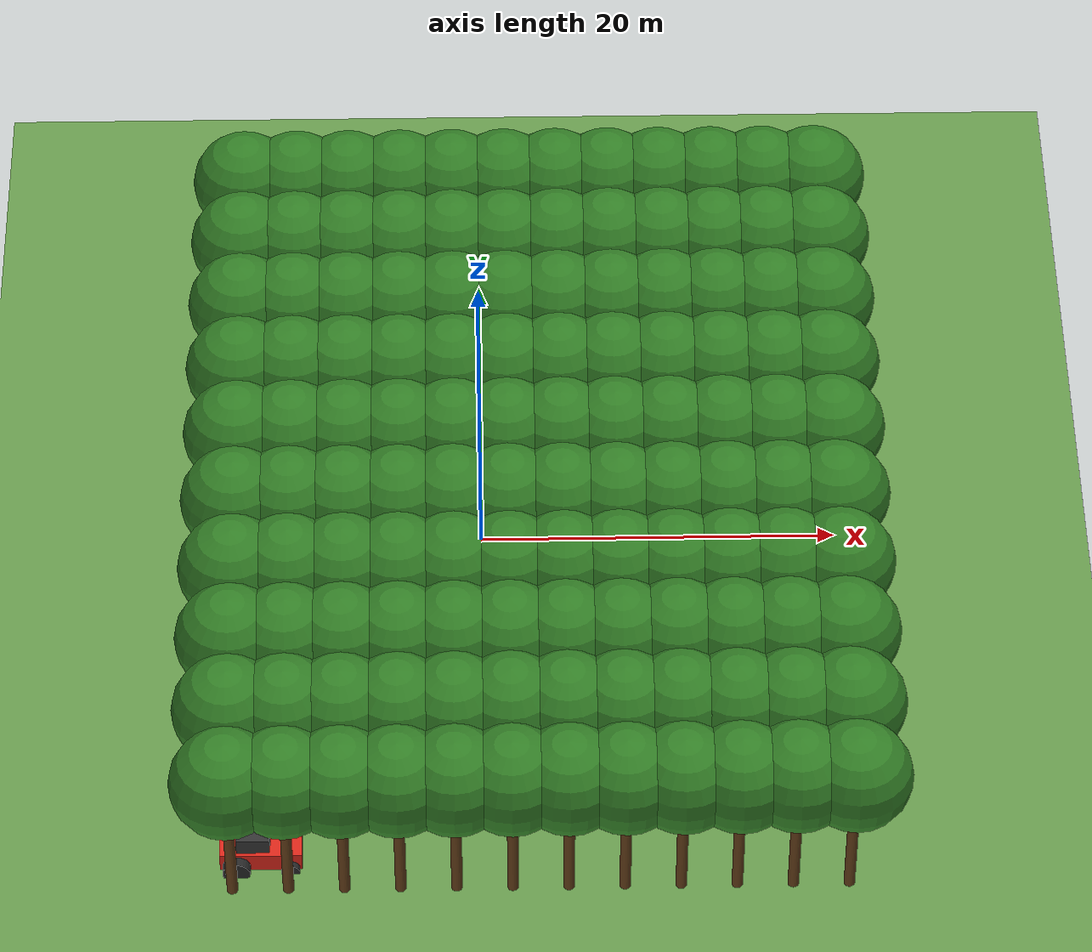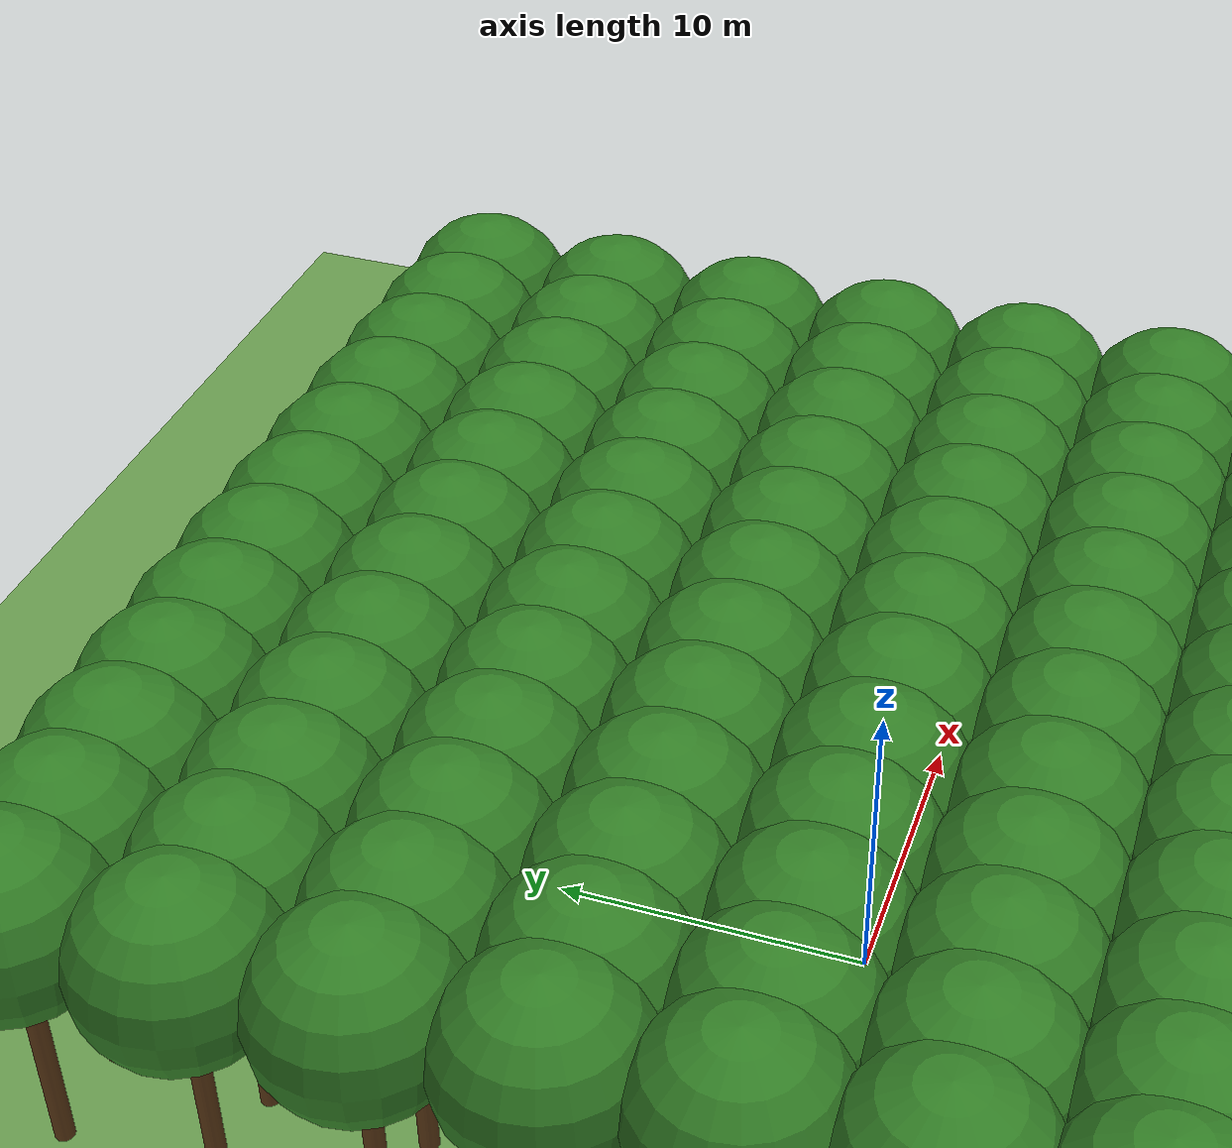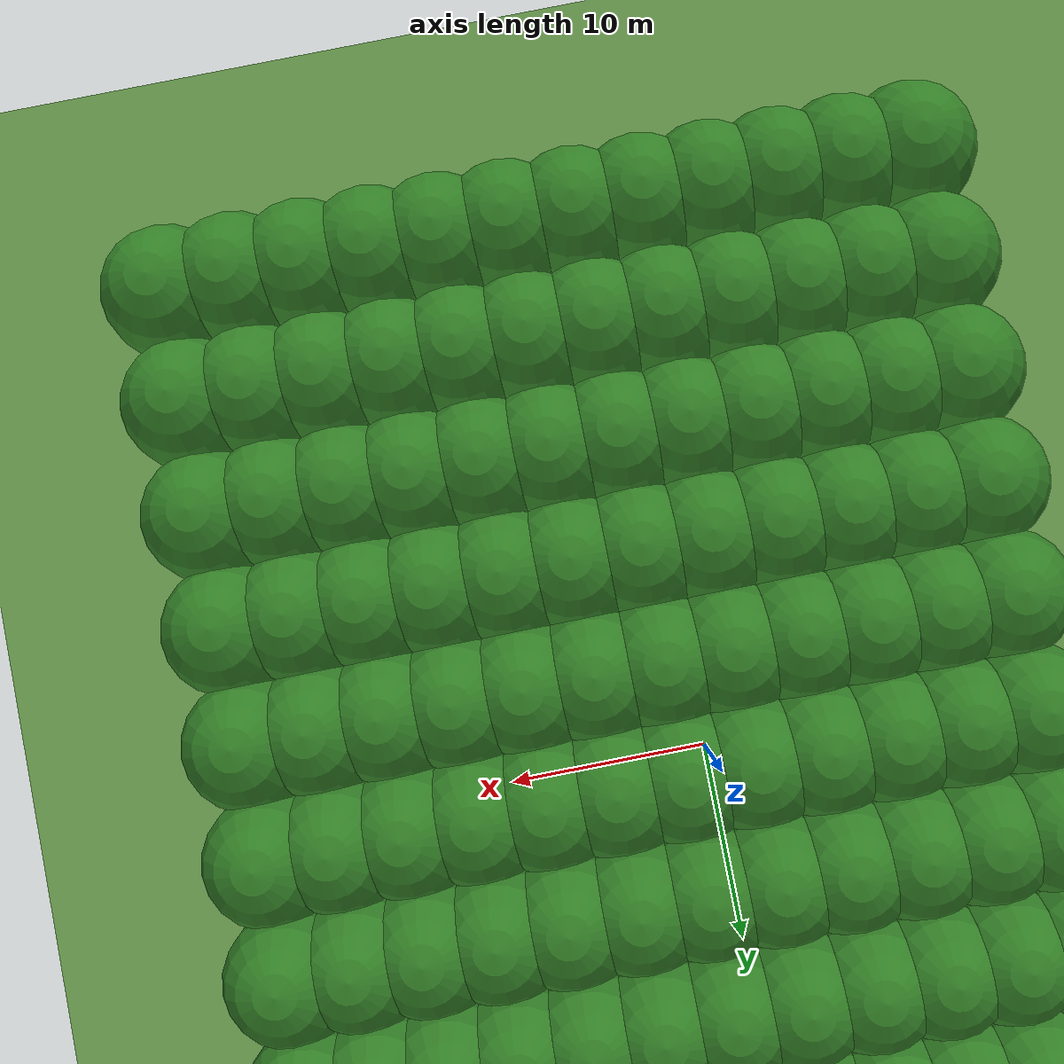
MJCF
<mujoco model="orchard_scene">
  <compiler angle="radian"/>

  <option integrator="implicitfast" iterations="50"/>

  <visual>
    <headlight ambient="0.3 0.3 0.3" diffuse="0.6 0.6 0.6"/>
  </visual>

  <asset>
    <texture type="2d" colorspace="auto" name="grid" builtin="checker" rgb1="0.2 0.3 0.4" rgb2="0.1 0.2 0.3" width="512" height="512"/>
    <material name="grid_mat" texture="grid" texrepeat="8 8" reflectance="0.2"/>
  </asset>

  <worldbody>
    <camera name="top_down_view" pos="0 0 20" quat="0.707107 0 0.707107 0"/>
    <light name="default_light" pos="0 0 10" dir="0 0 -1" diffuse="1 1 1"/>
    <body name="env_orchard">
      <geom name="env_orchard_ground" size="50 50 0.1" type="plane" rgba="0.4 0.6 0.3 1"/>
    </body>
    <body name="trees_r0_c0" pos="-13.5 -25 0">
      <geom name="trees_r0_c0_tree_trunk" size="0.3 4" pos="0 0 4" type="cylinder" rgba="0.4 0.25 0.1 1"/>
      <geom name="trees_r0_c0_tree_foliage" size="3" pos="0 0 9" rgba="0.2 0.5 0.15 1"/>
    </body>
    <body name="trees_r0_c1" pos="-10.5 -25 0">
      <geom name="trees_r0_c1_tree_trunk" size="0.3 4" pos="0 0 4" type="cylinder" rgba="0.4 0.25 0.1 1"/>
      <geom name="trees_r0_c1_tree_foliage" size="3" pos="0 0 9" rgba="0.2 0.5 0.15 1"/>
    </body>
    <body name="trees_r0_c2" pos="-7.5 -25 0">
      <geom name="trees_r0_c2_tree_trunk" size="0.3 4" pos="0 0 4" type="cylinder" rgba="0.4 0.25 0.1 1"/>
      <geom name="trees_r0_c2_tree_foliage" size="3" pos="0 0 9" rgba="0.2 0.5 0.15 1"/>
    </body>
    <body name="trees_r0_c3" pos="-4.5 -25 0">
      <geom name="trees_r0_c3_tree_trunk" size="0.3 4" pos="0 0 4" type="cylinder" rgba="0.4 0.25 0.1 1"/>
      <geom name="trees_r0_c3_tree_foliage" size="3" pos="0 0 9" rgba="0.2 0.5 0.15 1"/>
    </body>
    <body name="trees_r0_c4" pos="-1.5 -25 0">
      <geom name="trees_r0_c4_tree_trunk" size="0.3 4" pos="0 0 4" type="cylinder" rgba="0.4 0.25 0.1 1"/>
      <geom name="trees_r0_c4_tree_foliage" size="3" pos="0 0 9" rgba="0.2 0.5 0.15 1"/>
    </body>
    <body name="trees_r0_c5" pos="1.5 -25 0">
      <geom name="trees_r0_c5_tree_trunk" size="0.3 4" pos="0 0 4" type="cylinder" rgba="0.4 0.25 0.1 1"/>
      <geom name="trees_r0_c5_tree_foliage" size="3" pos="0 0 9" rgba="0.2 0.5 0.15 1"/>
    </body>
    <body name="trees_r0_c6" pos="4.5 -25 0">
      <geom name="trees_r0_c6_tree_trunk" size="0.3 4" pos="0 0 4" type="cylinder" rgba="0.4 0.25 0.1 1"/>
      <geom name="trees_r0_c6_tree_foliage" size="3" pos="0 0 9" rgba="0.2 0.5 0.15 1"/>
    </body>
    <body name="trees_r0_c7" pos="7.5 -25 0">
      <geom name="trees_r0_c7_tree_trunk" size="0.3 4" pos="0 0 4" type="cylinder" rgba="0.4 0.25 0.1 1"/>
      <geom name="trees_r0_c7_tree_foliage" size="3" pos="0 0 9" rgba="0.2 0.5 0.15 1"/>
    </body>
    <body name="trees_r0_c8" pos="10.5 -25 0">
      <geom name="trees_r0_c8_tree_trunk" size="0.3 4" pos="0 0 4" type="cylinder" rgba="0.4 0.25 0.1 1"/>
      <geom name="trees_r0_c8_tree_foliage" size="3" pos="0 0 9" rgba="0.2 0.5 0.15 1"/>
    </body>
    <body name="trees_r0_c9" pos="13.5 -25 0">
      <geom name="trees_r0_c9_tree_trunk" size="0.3 4" pos="0 0 4" type="cylinder" rgba="0.4 0.25 0.1 1"/>
      <geom name="trees_r0_c9_tree_foliage" size="3" pos="0 0 9" rgba="0.2 0.5 0.15 1"/>
    </body>
    <body name="trees_r0_c10" pos="16.5 -25 0">
      <geom name="trees_r0_c10_tree_trunk" size="0.3 4" pos="0 0 4" type="cylinder" rgba="0.4 0.25 0.1 1"/>
      <geom name="trees_r0_c10_tree_foliage" size="3" pos="0 0 9" rgba="0.2 0.5 0.15 1"/>
    </body>
    <body name="trees_r0_c11" pos="19.5 -25 0">
      <geom name="trees_r0_c11_tree_trunk" size="0.3 4" pos="0 0 4" type="cylinder" rgba="0.4 0.25 0.1 1"/>
      <geom name="trees_r0_c11_tree_foliage" size="3" pos="0 0 9" rgba="0.2 0.5 0.15 1"/>
    </body>
    <body name="trees_r1_c0" pos="-13.5 -20 0">
      <geom name="trees_r1_c0_tree_trunk" size="0.3 4" pos="0 0 4" type="cylinder" rgba="0.4 0.25 0.1 1"/>
      <geom name="trees_r1_c0_tree_foliage" size="3" pos="0 0 9" rgba="0.2 0.5 0.15 1"/>
    </body>
    <body name="trees_r1_c1" pos="-10.5 -20 0">
      <geom name="trees_r1_c1_tree_trunk" size="0.3 4" pos="0 0 4" type="cylinder" rgba="0.4 0.25 0.1 1"/>
      <geom name="trees_r1_c1_tree_foliage" size="3" pos="0 0 9" rgba="0.2 0.5 0.15 1"/>
    </body>
    <body name="trees_r1_c2" pos="-7.5 -20 0">
      <geom name="trees_r1_c2_tree_trunk" size="0.3 4" pos="0 0 4" type="cylinder" rgba="0.4 0.25 0.1 1"/>
      <geom name="trees_r1_c2_tree_foliage" size="3" pos="0 0 9" rgba="0.2 0.5 0.15 1"/>
    </body>
    <body name="trees_r1_c3" pos="-4.5 -20 0">
      <geom name="trees_r1_c3_tree_trunk" size="0.3 4" pos="0 0 4" type="cylinder" rgba="0.4 0.25 0.1 1"/>
      <geom name="trees_r1_c3_tree_foliage" size="3" pos="0 0 9" rgba="0.2 0.5 0.15 1"/>
    </body>
    <body name="trees_r1_c4" pos="-1.5 -20 0">
      <geom name="trees_r1_c4_tree_trunk" size="0.3 4" pos="0 0 4" type="cylinder" rgba="0.4 0.25 0.1 1"/>
      <geom name="trees_r1_c4_tree_foliage" size="3" pos="0 0 9" rgba="0.2 0.5 0.15 1"/>
    </body>
    <body name="trees_r1_c5" pos="1.5 -20 0">
      <geom name="trees_r1_c5_tree_trunk" size="0.3 4" pos="0 0 4" type="cylinder" rgba="0.4 0.25 0.1 1"/>
      <geom name="trees_r1_c5_tree_foliage" size="3" pos="0 0 9" rgba="0.2 0.5 0.15 1"/>
    </body>
    <body name="trees_r1_c6" pos="4.5 -20 0">
      <geom name="trees_r1_c6_tree_trunk" size="0.3 4" pos="0 0 4" type="cylinder" rgba="0.4 0.25 0.1 1"/>
      <geom name="trees_r1_c6_tree_foliage" size="3" pos="0 0 9" rgba="0.2 0.5 0.15 1"/>
    </body>
    <body name="trees_r1_c7" pos="7.5 -20 0">
      <geom name="trees_r1_c7_tree_trunk" size="0.3 4" pos="0 0 4" type="cylinder" rgba="0.4 0.25 0.1 1"/>
      <geom name="trees_r1_c7_tree_foliage" size="3" pos="0 0 9" rgba="0.2 0.5 0.15 1"/>
    </body>
    <body name="trees_r1_c8" pos="10.5 -20 0">
      <geom name="trees_r1_c8_tree_trunk" size="0.3 4" pos="0 0 4" type="cylinder" rgba="0.4 0.25 0.1 1"/>
      <geom name="trees_r1_c8_tree_foliage" size="3" pos="0 0 9" rgba="0.2 0.5 0.15 1"/>
    </body>
    <body name="trees_r1_c9" pos="13.5 -20 0">
      <geom name="trees_r1_c9_tree_trunk" size="0.3 4" pos="0 0 4" type="cylinder" rgba="0.4 0.25 0.1 1"/>
      <geom name="trees_r1_c9_tree_foliage" size="3" pos="0 0 9" rgba="0.2 0.5 0.15 1"/>
    </body>
    <body name="trees_r1_c10" pos="16.5 -20 0">
      <geom name="trees_r1_c10_tree_trunk" size="0.3 4" pos="0 0 4" type="cylinder" rgba="0.4 0.25 0.1 1"/>
      <geom name="trees_r1_c10_tree_foliage" size="3" pos="0 0 9" rgba="0.2 0.5 0.15 1"/>
    </body>
    <body name="trees_r1_c11" pos="19.5 -20 0">
      <geom name="trees_r1_c11_tree_trunk" size="0.3 4" pos="0 0 4" type="cylinder" rgba="0.4 0.25 0.1 1"/>
      <geom name="trees_r1_c11_tree_foliage" size="3" pos="0 0 9" rgba="0.2 0.5 0.15 1"/>
    </body>
    <body name="trees_r2_c0" pos="-13.5 -15 0">
      <geom name="trees_r2_c0_tree_trunk" size="0.3 4" pos="0 0 4" type="cylinder" rgba="0.4 0.25 0.1 1"/>
      <geom name="trees_r2_c0_tree_foliage" size="3" pos="0 0 9" rgba="0.2 0.5 0.15 1"/>
    </body>
    <body name="trees_r2_c1" pos="-10.5 -15 0">
      <geom name="trees_r2_c1_tree_trunk" size="0.3 4" pos="0 0 4" type="cylinder" rgba="0.4 0.25 0.1 1"/>
      <geom name="trees_r2_c1_tree_foliage" size="3" pos="0 0 9" rgba="0.2 0.5 0.15 1"/>
    </body>
    <body name="trees_r2_c2" pos="-7.5 -15 0">
      <geom name="trees_r2_c2_tree_trunk" size="0.3 4" pos="0 0 4" type="cylinder" rgba="0.4 0.25 0.1 1"/>
      <geom name="trees_r2_c2_tree_foliage" size="3" pos="0 0 9" rgba="0.2 0.5 0.15 1"/>
    </body>
    <body name="trees_r2_c3" pos="-4.5 -15 0">
      <geom name="trees_r2_c3_tree_trunk" size="0.3 4" pos="0 0 4" type="cylinder" rgba="0.4 0.25 0.1 1"/>
      <geom name="trees_r2_c3_tree_foliage" size="3" pos="0 0 9" rgba="0.2 0.5 0.15 1"/>
    </body>
    <body name="trees_r2_c4" pos="-1.5 -15 0">
      <geom name="trees_r2_c4_tree_trunk" size="0.3 4" pos="0 0 4" type="cylinder" rgba="0.4 0.25 0.1 1"/>
      <geom name="trees_r2_c4_tree_foliage" size="3" pos="0 0 9" rgba="0.2 0.5 0.15 1"/>
    </body>
    <body name="trees_r2_c5" pos="1.5 -15 0">
      <geom name="trees_r2_c5_tree_trunk" size="0.3 4" pos="0 0 4" type="cylinder" rgba="0.4 0.25 0.1 1"/>
      <geom name="trees_r2_c5_tree_foliage" size="3" pos="0 0 9" rgba="0.2 0.5 0.15 1"/>
    </body>
    <body name="trees_r2_c6" pos="4.5 -15 0">
      <geom name="trees_r2_c6_tree_trunk" size="0.3 4" pos="0 0 4" type="cylinder" rgba="0.4 0.25 0.1 1"/>
      <geom name="trees_r2_c6_tree_foliage" size="3" pos="0 0 9" rgba="0.2 0.5 0.15 1"/>
    </body>
    <body name="trees_r2_c7" pos="7.5 -15 0">
      <geom name="trees_r2_c7_tree_trunk" size="0.3 4" pos="0 0 4" type="cylinder" rgba="0.4 0.25 0.1 1"/>
      <geom name="trees_r2_c7_tree_foliage" size="3" pos="0 0 9" rgba="0.2 0.5 0.15 1"/>
    </body>
    <body name="trees_r2_c8" pos="10.5 -15 0">
      <geom name="trees_r2_c8_tree_trunk" size="0.3 4" pos="0 0 4" type="cylinder" rgba="0.4 0.25 0.1 1"/>
      <geom name="trees_r2_c8_tree_foliage" size="3" pos="0 0 9" rgba="0.2 0.5 0.15 1"/>
    </body>
    <body name="trees_r2_c9" pos="13.5 -15 0">
      <geom name="trees_r2_c9_tree_trunk" size="0.3 4" pos="0 0 4" type="cylinder" rgba="0.4 0.25 0.1 1"/>
      <geom name="trees_r2_c9_tree_foliage" size="3" pos="0 0 9" rgba="0.2 0.5 0.15 1"/>
    </body>
    <body name="trees_r2_c10" pos="16.5 -15 0">
      <geom name="trees_r2_c10_tree_trunk" size="0.3 4" pos="0 0 4" type="cylinder" rgba="0.4 0.25 0.1 1"/>
      <geom name="trees_r2_c10_tree_foliage" size="3" pos="0 0 9" rgba="0.2 0.5 0.15 1"/>
    </body>
    <body name="trees_r2_c11" pos="19.5 -15 0">
      <geom name="trees_r2_c11_tree_trunk" size="0.3 4" pos="0 0 4" type="cylinder" rgba="0.4 0.25 0.1 1"/>
      <geom name="trees_r2_c11_tree_foliage" size="3" pos="0 0 9" rgba="0.2 0.5 0.15 1"/>
    </body>
    <body name="trees_r3_c0" pos="-13.5 -10 0">
      <geom name="trees_r3_c0_tree_trunk" size="0.3 4" pos="0 0 4" type="cylinder" rgba="0.4 0.25 0.1 1"/>
      <geom name="trees_r3_c0_tree_foliage" size="3" pos="0 0 9" rgba="0.2 0.5 0.15 1"/>
    </body>
    <body name="trees_r3_c1" pos="-10.5 -10 0">
      <geom name="trees_r3_c1_tree_trunk" size="0.3 4" pos="0 0 4" type="cylinder" rgba="0.4 0.25 0.1 1"/>
      <geom name="trees_r3_c1_tree_foliage" size="3" pos="0 0 9" rgba="0.2 0.5 0.15 1"/>
    </body>
    <body name="trees_r3_c2" pos="-7.5 -10 0">
      <geom name="trees_r3_c2_tree_trunk" size="0.3 4" pos="0 0 4" type="cylinder" rgba="0.4 0.25 0.1 1"/>
      <geom name="trees_r3_c2_tree_foliage" size="3" pos="0 0 9" rgba="0.2 0.5 0.15 1"/>
    </body>
    <body name="trees_r3_c3" pos="-4.5 -10 0">
      <geom name="trees_r3_c3_tree_trunk" size="0.3 4" pos="0 0 4" type="cylinder" rgba="0.4 0.25 0.1 1"/>
      <geom name="trees_r3_c3_tree_foliage" size="3" pos="0 0 9" rgba="0.2 0.5 0.15 1"/>
    </body>
    <body name="trees_r3_c4" pos="-1.5 -10 0">
      <geom name="trees_r3_c4_tree_trunk" size="0.3 4" pos="0 0 4" type="cylinder" rgba="0.4 0.25 0.1 1"/>
      <geom name="trees_r3_c4_tree_foliage" size="3" pos="0 0 9" rgba="0.2 0.5 0.15 1"/>
    </body>
    <body name="trees_r3_c5" pos="1.5 -10 0">
      <geom name="trees_r3_c5_tree_trunk" size="0.3 4" pos="0 0 4" type="cylinder" rgba="0.4 0.25 0.1 1"/>
      <geom name="trees_r3_c5_tree_foliage" size="3" pos="0 0 9" rgba="0.2 0.5 0.15 1"/>
    </body>
    <body name="trees_r3_c6" pos="4.5 -10 0">
      <geom name="trees_r3_c6_tree_trunk" size="0.3 4" pos="0 0 4" type="cylinder" rgba="0.4 0.25 0.1 1"/>
      <geom name="trees_r3_c6_tree_foliage" size="3" pos="0 0 9" rgba="0.2 0.5 0.15 1"/>
    </body>
    <body name="trees_r3_c7" pos="7.5 -10 0">
      <geom name="trees_r3_c7_tree_trunk" size="0.3 4" pos="0 0 4" type="cylinder" rgba="0.4 0.25 0.1 1"/>
      <geom name="trees_r3_c7_tree_foliage" size="3" pos="0 0 9" rgba="0.2 0.5 0.15 1"/>
    </body>
    <body name="trees_r3_c8" pos="10.5 -10 0">
      <geom name="trees_r3_c8_tree_trunk" size="0.3 4" pos="0 0 4" type="cylinder" rgba="0.4 0.25 0.1 1"/>
      <geom name="trees_r3_c8_tree_foliage" size="3" pos="0 0 9" rgba="0.2 0.5 0.15 1"/>
    </body>
    <body name="trees_r3_c9" pos="13.5 -10 0">
      <geom name="trees_r3_c9_tree_trunk" size="0.3 4" pos="0 0 4" type="cylinder" rgba="0.4 0.25 0.1 1"/>
      <geom name="trees_r3_c9_tree_foliage" size="3" pos="0 0 9" rgba="0.2 0.5 0.15 1"/>
    </body>
    <body name="trees_r3_c10" pos="16.5 -10 0">
      <geom name="trees_r3_c10_tree_trunk" size="0.3 4" pos="0 0 4" type="cylinder" rgba="0.4 0.25 0.1 1"/>
      <geom name="trees_r3_c10_tree_foliage" size="3" pos="0 0 9" rgba="0.2 0.5 0.15 1"/>
    </body>
    <body name="trees_r3_c11" pos="19.5 -10 0">
      <geom name="trees_r3_c11_tree_trunk" size="0.3 4" pos="0 0 4" type="cylinder" rgba="0.4 0.25 0.1 1"/>
      <geom name="trees_r3_c11_tree_foliage" size="3" pos="0 0 9" rgba="0.2 0.5 0.15 1"/>
    </body>
    <body name="trees_r4_c0" pos="-13.5 -5 0">
      <geom name="trees_r4_c0_tree_trunk" size="0.3 4" pos="0 0 4" type="cylinder" rgba="0.4 0.25 0.1 1"/>
      <geom name="trees_r4_c0_tree_foliage" size="3" pos="0 0 9" rgba="0.2 0.5 0.15 1"/>
    </body>
    <body name="trees_r4_c1" pos="-10.5 -5 0">
      <geom name="trees_r4_c1_tree_trunk" size="0.3 4" pos="0 0 4" type="cylinder" rgba="0.4 0.25 0.1 1"/>
      <geom name="trees_r4_c1_tree_foliage" size="3" pos="0 0 9" rgba="0.2 0.5 0.15 1"/>
    </body>
    <body name="trees_r4_c2" pos="-7.5 -5 0">
      <geom name="trees_r4_c2_tree_trunk" size="0.3 4" pos="0 0 4" type="cylinder" rgba="0.4 0.25 0.1 1"/>
      <geom name="trees_r4_c2_tree_foliage" size="3" pos="0 0 9" rgba="0.2 0.5 0.15 1"/>
    </body>
    <body name="trees_r4_c3" pos="-4.5 -5 0">
      <geom name="trees_r4_c3_tree_trunk" size="0.3 4" pos="0 0 4" type="cylinder" rgba="0.4 0.25 0.1 1"/>
      <geom name="trees_r4_c3_tree_foliage" size="3" pos="0 0 9" rgba="0.2 0.5 0.15 1"/>
    </body>
    <body name="trees_r4_c4" pos="-1.5 -5 0">
      <geom name="trees_r4_c4_tree_trunk" size="0.3 4" pos="0 0 4" type="cylinder" rgba="0.4 0.25 0.1 1"/>
      <geom name="trees_r4_c4_tree_foliage" size="3" pos="0 0 9" rgba="0.2 0.5 0.15 1"/>
    </body>
    <body name="trees_r4_c5" pos="1.5 -5 0">
      <geom name="trees_r4_c5_tree_trunk" size="0.3 4" pos="0 0 4" type="cylinder" rgba="0.4 0.25 0.1 1"/>
      <geom name="trees_r4_c5_tree_foliage" size="3" pos="0 0 9" rgba="0.2 0.5 0.15 1"/>
    </body>
    <body name="trees_r4_c6" pos="4.5 -5 0">
      <geom name="trees_r4_c6_tree_trunk" size="0.3 4" pos="0 0 4" type="cylinder" rgba="0.4 0.25 0.1 1"/>
      <geom name="trees_r4_c6_tree_foliage" size="3" pos="0 0 9" rgba="0.2 0.5 0.15 1"/>
    </body>
    <body name="trees_r4_c7" pos="7.5 -5 0">
      <geom name="trees_r4_c7_tree_trunk" size="0.3 4" pos="0 0 4" type="cylinder" rgba="0.4 0.25 0.1 1"/>
      <geom name="trees_r4_c7_tree_foliage" size="3" pos="0 0 9" rgba="0.2 0.5 0.15 1"/>
    </body>
    <body name="trees_r4_c8" pos="10.5 -5 0">
      <geom name="trees_r4_c8_tree_trunk" size="0.3 4" pos="0 0 4" type="cylinder" rgba="0.4 0.25 0.1 1"/>
      <geom name="trees_r4_c8_tree_foliage" size="3" pos="0 0 9" rgba="0.2 0.5 0.15 1"/>
    </body>
    <body name="trees_r4_c9" pos="13.5 -5 0">
      <geom name="trees_r4_c9_tree_trunk" size="0.3 4" pos="0 0 4" type="cylinder" rgba="0.4 0.25 0.1 1"/>
      <geom name="trees_r4_c9_tree_foliage" size="3" pos="0 0 9" rgba="0.2 0.5 0.15 1"/>
    </body>
    <body name="trees_r4_c10" pos="16.5 -5 0">
      <geom name="trees_r4_c10_tree_trunk" size="0.3 4" pos="0 0 4" type="cylinder" rgba="0.4 0.25 0.1 1"/>
      <geom name="trees_r4_c10_tree_foliage" size="3" pos="0 0 9" rgba="0.2 0.5 0.15 1"/>
    </body>
    <body name="trees_r4_c11" pos="19.5 -5 0">
      <geom name="trees_r4_c11_tree_trunk" size="0.3 4" pos="0 0 4" type="cylinder" rgba="0.4 0.25 0.1 1"/>
      <geom name="trees_r4_c11_tree_foliage" size="3" pos="0 0 9" rgba="0.2 0.5 0.15 1"/>
    </body>
    <body name="trees_r5_c0" pos="-13.5 0 0">
      <geom name="trees_r5_c0_tree_trunk" size="0.3 4" pos="0 0 4" type="cylinder" rgba="0.4 0.25 0.1 1"/>
      <geom name="trees_r5_c0_tree_foliage" size="3" pos="0 0 9" rgba="0.2 0.5 0.15 1"/>
    </body>
    <body name="trees_r5_c1" pos="-10.5 0 0">
      <geom name="trees_r5_c1_tree_trunk" size="0.3 4" pos="0 0 4" type="cylinder" rgba="0.4 0.25 0.1 1"/>
      <geom name="trees_r5_c1_tree_foliage" size="3" pos="0 0 9" rgba="0.2 0.5 0.15 1"/>
    </body>
    <body name="trees_r5_c2" pos="-7.5 0 0">
      <geom name="trees_r5_c2_tree_trunk" size="0.3 4" pos="0 0 4" type="cylinder" rgba="0.4 0.25 0.1 1"/>
      <geom name="trees_r5_c2_tree_foliage" size="3" pos="0 0 9" rgba="0.2 0.5 0.15 1"/>
    </body>
    <body name="trees_r5_c3" pos="-4.5 0 0">
      <geom name="trees_r5_c3_tree_trunk" size="0.3 4" pos="0 0 4" type="cylinder" rgba="0.4 0.25 0.1 1"/>
      <geom name="trees_r5_c3_tree_foliage" size="3" pos="0 0 9" rgba="0.2 0.5 0.15 1"/>
    </body>
    <body name="trees_r5_c4" pos="-1.5 0 0">
      <geom name="trees_r5_c4_tree_trunk" size="0.3 4" pos="0 0 4" type="cylinder" rgba="0.4 0.25 0.1 1"/>
      <geom name="trees_r5_c4_tree_foliage" size="3" pos="0 0 9" rgba="0.2 0.5 0.15 1"/>
    </body>
    <body name="trees_r5_c5" pos="1.5 0 0">
      <geom name="trees_r5_c5_tree_trunk" size="0.3 4" pos="0 0 4" type="cylinder" rgba="0.4 0.25 0.1 1"/>
      <geom name="trees_r5_c5_tree_foliage" size="3" pos="0 0 9" rgba="0.2 0.5 0.15 1"/>
    </body>
    <body name="trees_r5_c6" pos="4.5 0 0">
      <geom name="trees_r5_c6_tree_trunk" size="0.3 4" pos="0 0 4" type="cylinder" rgba="0.4 0.25 0.1 1"/>
      <geom name="trees_r5_c6_tree_foliage" size="3" pos="0 0 9" rgba="0.2 0.5 0.15 1"/>
    </body>
    <body name="trees_r5_c7" pos="7.5 0 0">
      <geom name="trees_r5_c7_tree_trunk" size="0.3 4" pos="0 0 4" type="cylinder" rgba="0.4 0.25 0.1 1"/>
      <geom name="trees_r5_c7_tree_foliage" size="3" pos="0 0 9" rgba="0.2 0.5 0.15 1"/>
    </body>
    <body name="trees_r5_c8" pos="10.5 0 0">
      <geom name="trees_r5_c8_tree_trunk" size="0.3 4" pos="0 0 4" type="cylinder" rgba="0.4 0.25 0.1 1"/>
      <geom name="trees_r5_c8_tree_foliage" size="3" pos="0 0 9" rgba="0.2 0.5 0.15 1"/>
    </body>
    <body name="trees_r5_c9" pos="13.5 0 0">
      <geom name="trees_r5_c9_tree_trunk" size="0.3 4" pos="0 0 4" type="cylinder" rgba="0.4 0.25 0.1 1"/>
      <geom name="trees_r5_c9_tree_foliage" size="3" pos="0 0 9" rgba="0.2 0.5 0.15 1"/>
    </body>
    <body name="trees_r5_c10" pos="16.5 0 0">
      <geom name="trees_r5_c10_tree_trunk" size="0.3 4" pos="0 0 4" type="cylinder" rgba="0.4 0.25 0.1 1"/>
      <geom name="trees_r5_c10_tree_foliage" size="3" pos="0 0 9" rgba="0.2 0.5 0.15 1"/>
    </body>
    <body name="trees_r5_c11" pos="19.5 0 0">
      <geom name="trees_r5_c11_tree_trunk" size="0.3 4" pos="0 0 4" type="cylinder" rgba="0.4 0.25 0.1 1"/>
      <geom name="trees_r5_c11_tree_foliage" size="3" pos="0 0 9" rgba="0.2 0.5 0.15 1"/>
    </body>
    <body name="trees_r6_c0" pos="-13.5 5 0">
      <geom name="trees_r6_c0_tree_trunk" size="0.3 4" pos="0 0 4" type="cylinder" rgba="0.4 0.25 0.1 1"/>
      <geom name="trees_r6_c0_tree_foliage" size="3" pos="0 0 9" rgba="0.2 0.5 0.15 1"/>
    </body>
    <body name="trees_r6_c1" pos="-10.5 5 0">
      <geom name="trees_r6_c1_tree_trunk" size="0.3 4" pos="0 0 4" type="cylinder" rgba="0.4 0.25 0.1 1"/>
      <geom name="trees_r6_c1_tree_foliage" size="3" pos="0 0 9" rgba="0.2 0.5 0.15 1"/>
    </body>
    <body name="trees_r6_c2" pos="-7.5 5 0">
      <geom name="trees_r6_c2_tree_trunk" size="0.3 4" pos="0 0 4" type="cylinder" rgba="0.4 0.25 0.1 1"/>
      <geom name="trees_r6_c2_tree_foliage" size="3" pos="0 0 9" rgba="0.2 0.5 0.15 1"/>
    </body>
    <body name="trees_r6_c3" pos="-4.5 5 0">
      <geom name="trees_r6_c3_tree_trunk" size="0.3 4" pos="0 0 4" type="cylinder" rgba="0.4 0.25 0.1 1"/>
      <geom name="trees_r6_c3_tree_foliage" size="3" pos="0 0 9" rgba="0.2 0.5 0.15 1"/>
    </body>
    <body name="trees_r6_c4" pos="-1.5 5 0">
      <geom name="trees_r6_c4_tree_trunk" size="0.3 4" pos="0 0 4" type="cylinder" rgba="0.4 0.25 0.1 1"/>
      <geom name="trees_r6_c4_tree_foliage" size="3" pos="0 0 9" rgba="0.2 0.5 0.15 1"/>
    </body>
    <body name="trees_r6_c5" pos="1.5 5 0">
      <geom name="trees_r6_c5_tree_trunk" size="0.3 4" pos="0 0 4" type="cylinder" rgba="0.4 0.25 0.1 1"/>
      <geom name="trees_r6_c5_tree_foliage" size="3" pos="0 0 9" rgba="0.2 0.5 0.15 1"/>
    </body>
    <body name="trees_r6_c6" pos="4.5 5 0">
      <geom name="trees_r6_c6_tree_trunk" size="0.3 4" pos="0 0 4" type="cylinder" rgba="0.4 0.25 0.1 1"/>
      <geom name="trees_r6_c6_tree_foliage" size="3" pos="0 0 9" rgba="0.2 0.5 0.15 1"/>
    </body>
    <body name="trees_r6_c7" pos="7.5 5 0">
      <geom name="trees_r6_c7_tree_trunk" size="0.3 4" pos="0 0 4" type="cylinder" rgba="0.4 0.25 0.1 1"/>
      <geom name="trees_r6_c7_tree_foliage" size="3" pos="0 0 9" rgba="0.2 0.5 0.15 1"/>
    </body>
    <body name="trees_r6_c8" pos="10.5 5 0">
      <geom name="trees_r6_c8_tree_trunk" size="0.3 4" pos="0 0 4" type="cylinder" rgba="0.4 0.25 0.1 1"/>
      <geom name="trees_r6_c8_tree_foliage" size="3" pos="0 0 9" rgba="0.2 0.5 0.15 1"/>
    </body>
    <body name="trees_r6_c9" pos="13.5 5 0">
      <geom name="trees_r6_c9_tree_trunk" size="0.3 4" pos="0 0 4" type="cylinder" rgba="0.4 0.25 0.1 1"/>
      <geom name="trees_r6_c9_tree_foliage" size="3" pos="0 0 9" rgba="0.2 0.5 0.15 1"/>
    </body>
    <body name="trees_r6_c10" pos="16.5 5 0">
      <geom name="trees_r6_c10_tree_trunk" size="0.3 4" pos="0 0 4" type="cylinder" rgba="0.4 0.25 0.1 1"/>
      <geom name="trees_r6_c10_tree_foliage" size="3" pos="0 0 9" rgba="0.2 0.5 0.15 1"/>
    </body>
    <body name="trees_r6_c11" pos="19.5 5 0">
      <geom name="trees_r6_c11_tree_trunk" size="0.3 4" pos="0 0 4" type="cylinder" rgba="0.4 0.25 0.1 1"/>
      <geom name="trees_r6_c11_tree_foliage" size="3" pos="0 0 9" rgba="0.2 0.5 0.15 1"/>
    </body>
    <body name="trees_r7_c0" pos="-13.5 10 0">
      <geom name="trees_r7_c0_tree_trunk" size="0.3 4" pos="0 0 4" type="cylinder" rgba="0.4 0.25 0.1 1"/>
      <geom name="trees_r7_c0_tree_foliage" size="3" pos="0 0 9" rgba="0.2 0.5 0.15 1"/>
    </body>
    <body name="trees_r7_c1" pos="-10.5 10 0">
      <geom name="trees_r7_c1_tree_trunk" size="0.3 4" pos="0 0 4" type="cylinder" rgba="0.4 0.25 0.1 1"/>
      <geom name="trees_r7_c1_tree_foliage" size="3" pos="0 0 9" rgba="0.2 0.5 0.15 1"/>
    </body>
    <body name="trees_r7_c2" pos="-7.5 10 0">
      <geom name="trees_r7_c2_tree_trunk" size="0.3 4" pos="0 0 4" type="cylinder" rgba="0.4 0.25 0.1 1"/>
      <geom name="trees_r7_c2_tree_foliage" size="3" pos="0 0 9" rgba="0.2 0.5 0.15 1"/>
    </body>
    <body name="trees_r7_c3" pos="-4.5 10 0">
      <geom name="trees_r7_c3_tree_trunk" size="0.3 4" pos="0 0 4" type="cylinder" rgba="0.4 0.25 0.1 1"/>
      <geom name="trees_r7_c3_tree_foliage" size="3" pos="0 0 9" rgba="0.2 0.5 0.15 1"/>
    </body>
    <body name="trees_r7_c4" pos="-1.5 10 0">
      <geom name="trees_r7_c4_tree_trunk" size="0.3 4" pos="0 0 4" type="cylinder" rgba="0.4 0.25 0.1 1"/>
      <geom name="trees_r7_c4_tree_foliage" size="3" pos="0 0 9" rgba="0.2 0.5 0.15 1"/>
    </body>
    <body name="trees_r7_c5" pos="1.5 10 0">
      <geom name="trees_r7_c5_tree_trunk" size="0.3 4" pos="0 0 4" type="cylinder" rgba="0.4 0.25 0.1 1"/>
      <geom name="trees_r7_c5_tree_foliage" size="3" pos="0 0 9" rgba="0.2 0.5 0.15 1"/>
    </body>
    <body name="trees_r7_c6" pos="4.5 10 0">
      <geom name="trees_r7_c6_tree_trunk" size="0.3 4" pos="0 0 4" type="cylinder" rgba="0.4 0.25 0.1 1"/>
      <geom name="trees_r7_c6_tree_foliage" size="3" pos="0 0 9" rgba="0.2 0.5 0.15 1"/>
    </body>
    <body name="trees_r7_c7" pos="7.5 10 0">
      <geom name="trees_r7_c7_tree_trunk" size="0.3 4" pos="0 0 4" type="cylinder" rgba="0.4 0.25 0.1 1"/>
      <geom name="trees_r7_c7_tree_foliage" size="3" pos="0 0 9" rgba="0.2 0.5 0.15 1"/>
    </body>
    <body name="trees_r7_c8" pos="10.5 10 0">
      <geom name="trees_r7_c8_tree_trunk" size="0.3 4" pos="0 0 4" type="cylinder" rgba="0.4 0.25 0.1 1"/>
      <geom name="trees_r7_c8_tree_foliage" size="3" pos="0 0 9" rgba="0.2 0.5 0.15 1"/>
    </body>
    <body name="trees_r7_c9" pos="13.5 10 0">
      <geom name="trees_r7_c9_tree_trunk" size="0.3 4" pos="0 0 4" type="cylinder" rgba="0.4 0.25 0.1 1"/>
      <geom name="trees_r7_c9_tree_foliage" size="3" pos="0 0 9" rgba="0.2 0.5 0.15 1"/>
    </body>
    <body name="trees_r7_c10" pos="16.5 10 0">
      <geom name="trees_r7_c10_tree_trunk" size="0.3 4" pos="0 0 4" type="cylinder" rgba="0.4 0.25 0.1 1"/>
      <geom name="trees_r7_c10_tree_foliage" size="3" pos="0 0 9" rgba="0.2 0.5 0.15 1"/>
    </body>
    <body name="trees_r7_c11" pos="19.5 10 0">
      <geom name="trees_r7_c11_tree_trunk" size="0.3 4" pos="0 0 4" type="cylinder" rgba="0.4 0.25 0.1 1"/>
      <geom name="trees_r7_c11_tree_foliage" size="3" pos="0 0 9" rgba="0.2 0.5 0.15 1"/>
    </body>
    <body name="trees_r8_c0" pos="-13.5 15 0">
      <geom name="trees_r8_c0_tree_trunk" size="0.3 4" pos="0 0 4" type="cylinder" rgba="0.4 0.25 0.1 1"/>
      <geom name="trees_r8_c0_tree_foliage" size="3" pos="0 0 9" rgba="0.2 0.5 0.15 1"/>
    </body>
    <body name="trees_r8_c1" pos="-10.5 15 0">
      <geom name="trees_r8_c1_tree_trunk" size="0.3 4" pos="0 0 4" type="cylinder" rgba="0.4 0.25 0.1 1"/>
      <geom name="trees_r8_c1_tree_foliage" size="3" pos="0 0 9" rgba="0.2 0.5 0.15 1"/>
    </body>
    <body name="trees_r8_c2" pos="-7.5 15 0">
      <geom name="trees_r8_c2_tree_trunk" size="0.3 4" pos="0 0 4" type="cylinder" rgba="0.4 0.25 0.1 1"/>
      <geom name="trees_r8_c2_tree_foliage" size="3" pos="0 0 9" rgba="0.2 0.5 0.15 1"/>
    </body>
    <body name="trees_r8_c3" pos="-4.5 15 0">
      <geom name="trees_r8_c3_tree_trunk" size="0.3 4" pos="0 0 4" type="cylinder" rgba="0.4 0.25 0.1 1"/>
      <geom name="trees_r8_c3_tree_foliage" size="3" pos="0 0 9" rgba="0.2 0.5 0.15 1"/>
    </body>
    <body name="trees_r8_c4" pos="-1.5 15 0">
      <geom name="trees_r8_c4_tree_trunk" size="0.3 4" pos="0 0 4" type="cylinder" rgba="0.4 0.25 0.1 1"/>
      <geom name="trees_r8_c4_tree_foliage" size="3" pos="0 0 9" rgba="0.2 0.5 0.15 1"/>
    </body>
    <body name="trees_r8_c5" pos="1.5 15 0">
      <geom name="trees_r8_c5_tree_trunk" size="0.3 4" pos="0 0 4" type="cylinder" rgba="0.4 0.25 0.1 1"/>
      <geom name="trees_r8_c5_tree_foliage" size="3" pos="0 0 9" rgba="0.2 0.5 0.15 1"/>
    </body>
    <body name="trees_r8_c6" pos="4.5 15 0">
      <geom name="trees_r8_c6_tree_trunk" size="0.3 4" pos="0 0 4" type="cylinder" rgba="0.4 0.25 0.1 1"/>
      <geom name="trees_r8_c6_tree_foliage" size="3" pos="0 0 9" rgba="0.2 0.5 0.15 1"/>
    </body>
    <body name="trees_r8_c7" pos="7.5 15 0">
      <geom name="trees_r8_c7_tree_trunk" size="0.3 4" pos="0 0 4" type="cylinder" rgba="0.4 0.25 0.1 1"/>
      <geom name="trees_r8_c7_tree_foliage" size="3" pos="0 0 9" rgba="0.2 0.5 0.15 1"/>
    </body>
    <body name="trees_r8_c8" pos="10.5 15 0">
      <geom name="trees_r8_c8_tree_trunk" size="0.3 4" pos="0 0 4" type="cylinder" rgba="0.4 0.25 0.1 1"/>
      <geom name="trees_r8_c8_tree_foliage" size="3" pos="0 0 9" rgba="0.2 0.5 0.15 1"/>
    </body>
    <body name="trees_r8_c9" pos="13.5 15 0">
      <geom name="trees_r8_c9_tree_trunk" size="0.3 4" pos="0 0 4" type="cylinder" rgba="0.4 0.25 0.1 1"/>
      <geom name="trees_r8_c9_tree_foliage" size="3" pos="0 0 9" rgba="0.2 0.5 0.15 1"/>
    </body>
    <body name="trees_r8_c10" pos="16.5 15 0">
      <geom name="trees_r8_c10_tree_trunk" size="0.3 4" pos="0 0 4" type="cylinder" rgba="0.4 0.25 0.1 1"/>
      <geom name="trees_r8_c10_tree_foliage" size="3" pos="0 0 9" rgba="0.2 0.5 0.15 1"/>
    </body>
    <body name="trees_r8_c11" pos="19.5 15 0">
      <geom name="trees_r8_c11_tree_trunk" size="0.3 4" pos="0 0 4" type="cylinder" rgba="0.4 0.25 0.1 1"/>
      <geom name="trees_r8_c11_tree_foliage" size="3" pos="0 0 9" rgba="0.2 0.5 0.15 1"/>
    </body>
    <body name="trees_r9_c0" pos="-13.5 20 0">
      <geom name="trees_r9_c0_tree_trunk" size="0.3 4" pos="0 0 4" type="cylinder" rgba="0.4 0.25 0.1 1"/>
      <geom name="trees_r9_c0_tree_foliage" size="3" pos="0 0 9" rgba="0.2 0.5 0.15 1"/>
    </body>
    <body name="trees_r9_c1" pos="-10.5 20 0">
      <geom name="trees_r9_c1_tree_trunk" size="0.3 4" pos="0 0 4" type="cylinder" rgba="0.4 0.25 0.1 1"/>
      <geom name="trees_r9_c1_tree_foliage" size="3" pos="0 0 9" rgba="0.2 0.5 0.15 1"/>
    </body>
    <body name="trees_r9_c2" pos="-7.5 20 0">
      <geom name="trees_r9_c2_tree_trunk" size="0.3 4" pos="0 0 4" type="cylinder" rgba="0.4 0.25 0.1 1"/>
      <geom name="trees_r9_c2_tree_foliage" size="3" pos="0 0 9" rgba="0.2 0.5 0.15 1"/>
    </body>
    <body name="trees_r9_c3" pos="-4.5 20 0">
      <geom name="trees_r9_c3_tree_trunk" size="0.3 4" pos="0 0 4" type="cylinder" rgba="0.4 0.25 0.1 1"/>
      <geom name="trees_r9_c3_tree_foliage" size="3" pos="0 0 9" rgba="0.2 0.5 0.15 1"/>
    </body>
    <body name="trees_r9_c4" pos="-1.5 20 0">
      <geom name="trees_r9_c4_tree_trunk" size="0.3 4" pos="0 0 4" type="cylinder" rgba="0.4 0.25 0.1 1"/>
      <geom name="trees_r9_c4_tree_foliage" size="3" pos="0 0 9" rgba="0.2 0.5 0.15 1"/>
    </body>
    <body name="trees_r9_c5" pos="1.5 20 0">
      <geom name="trees_r9_c5_tree_trunk" size="0.3 4" pos="0 0 4" type="cylinder" rgba="0.4 0.25 0.1 1"/>
      <geom name="trees_r9_c5_tree_foliage" size="3" pos="0 0 9" rgba="0.2 0.5 0.15 1"/>
    </body>
    <body name="trees_r9_c6" pos="4.5 20 0">
      <geom name="trees_r9_c6_tree_trunk" size="0.3 4" pos="0 0 4" type="cylinder" rgba="0.4 0.25 0.1 1"/>
      <geom name="trees_r9_c6_tree_foliage" size="3" pos="0 0 9" rgba="0.2 0.5 0.15 1"/>
    </body>
    <body name="trees_r9_c7" pos="7.5 20 0">
      <geom name="trees_r9_c7_tree_trunk" size="0.3 4" pos="0 0 4" type="cylinder" rgba="0.4 0.25 0.1 1"/>
      <geom name="trees_r9_c7_tree_foliage" size="3" pos="0 0 9" rgba="0.2 0.5 0.15 1"/>
    </body>
    <body name="trees_r9_c8" pos="10.5 20 0">
      <geom name="trees_r9_c8_tree_trunk" size="0.3 4" pos="0 0 4" type="cylinder" rgba="0.4 0.25 0.1 1"/>
      <geom name="trees_r9_c8_tree_foliage" size="3" pos="0 0 9" rgba="0.2 0.5 0.15 1"/>
    </body>
    <body name="trees_r9_c9" pos="13.5 20 0">
      <geom name="trees_r9_c9_tree_trunk" size="0.3 4" pos="0 0 4" type="cylinder" rgba="0.4 0.25 0.1 1"/>
      <geom name="trees_r9_c9_tree_foliage" size="3" pos="0 0 9" rgba="0.2 0.5 0.15 1"/>
    </body>
    <body name="trees_r9_c10" pos="16.5 20 0">
      <geom name="trees_r9_c10_tree_trunk" size="0.3 4" pos="0 0 4" type="cylinder" rgba="0.4 0.25 0.1 1"/>
      <geom name="trees_r9_c10_tree_foliage" size="3" pos="0 0 9" rgba="0.2 0.5 0.15 1"/>
    </body>
    <body name="trees_r9_c11" pos="19.5 20 0">
      <geom name="trees_r9_c11_tree_trunk" size="0.3 4" pos="0 0 4" type="cylinder" rgba="0.4 0.25 0.1 1"/>
      <geom name="trees_r9_c11_tree_foliage" size="3" pos="0 0 9" rgba="0.2 0.5 0.15 1"/>
    </body>
    <body name="tractor_red_0" pos="-12 -22.5 0.5">
      <geom name="tractor_red_0_chassis" size="2.2 1.1 0.6" type="box" mass="1200" rgba="0.85 0.15 0.1 1"/>
      <geom name="tractor_red_0_cabin" size="0.9 0.9 0.7" pos="-0.4 0 0.9" type="box" mass="300" rgba="0.2 0.2 0.2 1"/>
      <geom name="tractor_red_0_hood" size="1 0.8 0.3" pos="1.2 0 0.2" type="box" mass="100" rgba="0.85 0.15 0.1 1"/>
      <geom name="tractor_red_0_exhaust" size="0.08 0.5" pos="0.8 0.6 1" type="cylinder" rgba="0.3 0.3 0.3 1"/>
      <geom name="tractor_red_0_wheel_fl" size="0.5 0.25" pos="1.6 1.2 -0.4" quat="0.707107 0.707107 0 0" type="cylinder" rgba="0.15 0.15 0.15 1"/>
      <geom name="tractor_red_0_wheel_fr" size="0.5 0.25" pos="1.6 -1.2 -0.4" quat="0.707107 0.707107 0 0" type="cylinder" rgba="0.15 0.15 0.15 1"/>
      <geom name="tractor_red_0_wheel_rl" size="0.75 0.35" pos="-1.3 1.3 -0.25" quat="0.707107 0.707107 0 0" type="cylinder" rgba="0.15 0.15 0.15 1"/>
      <geom name="tractor_red_0_wheel_rr" size="0.75 0.35" pos="-1.3 -1.3 -0.25" quat="0.707107 0.707107 0 0" type="cylinder" rgba="0.15 0.15 0.15 1"/>
    </body>
  </worldbody>
</mujoco>
